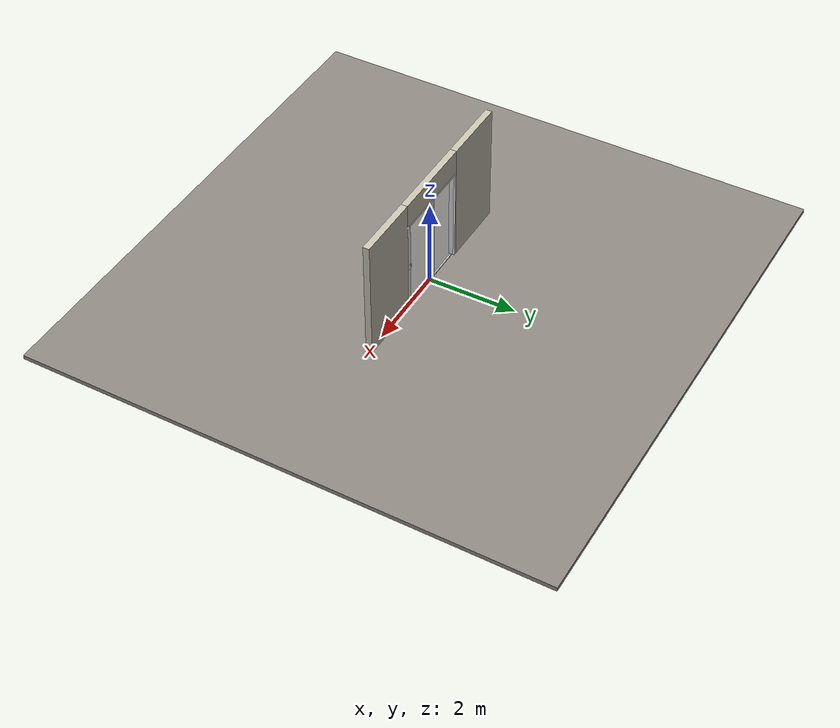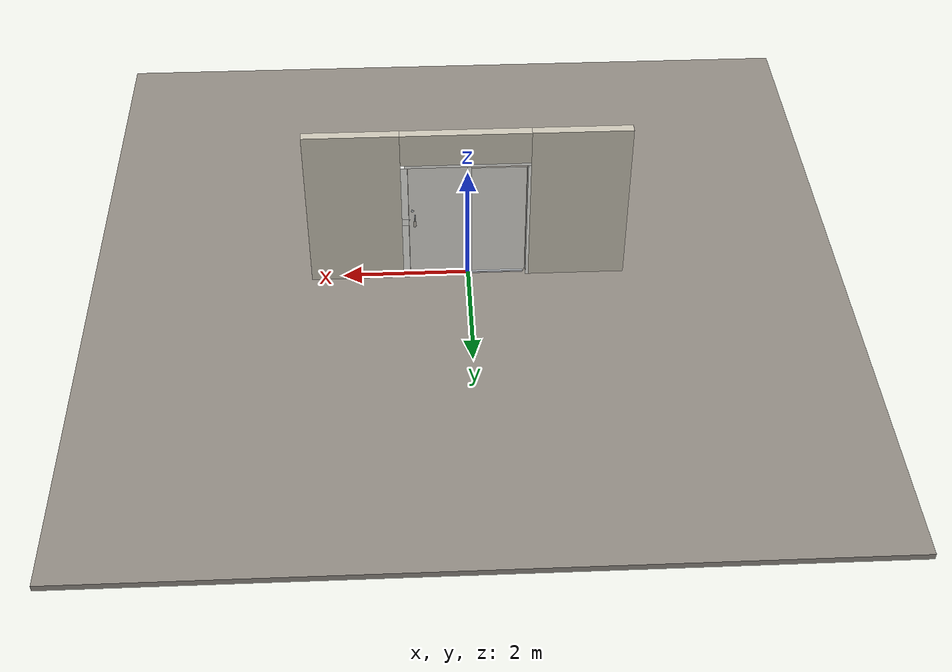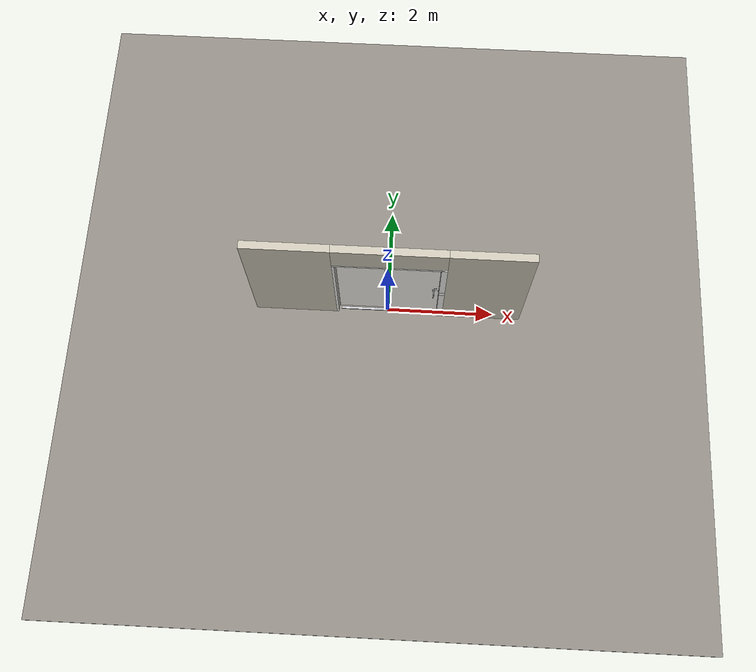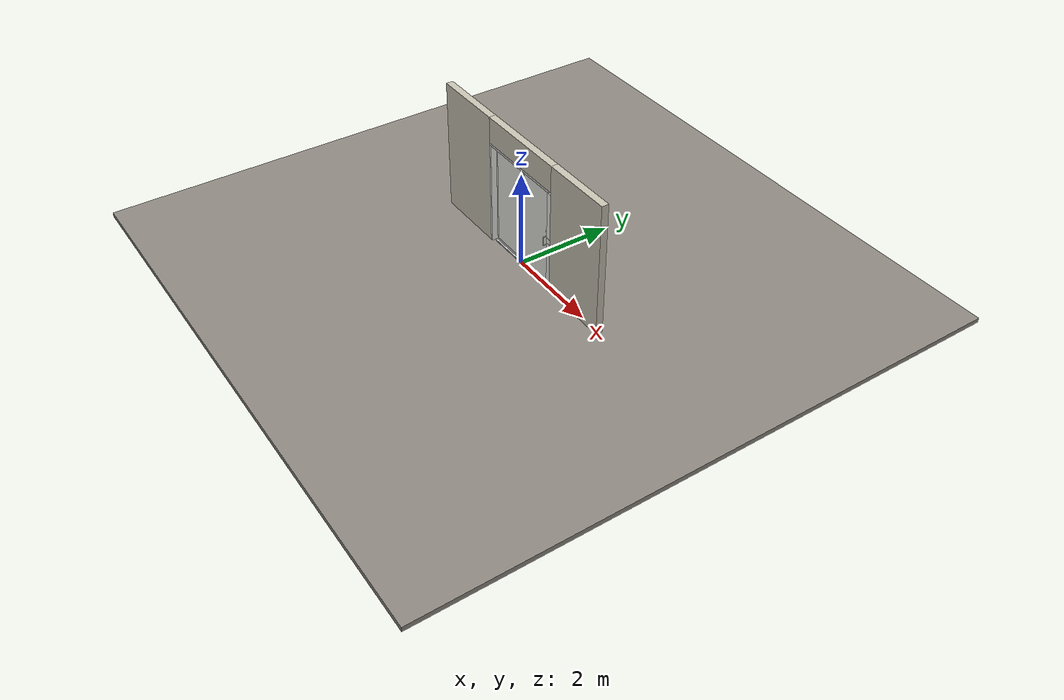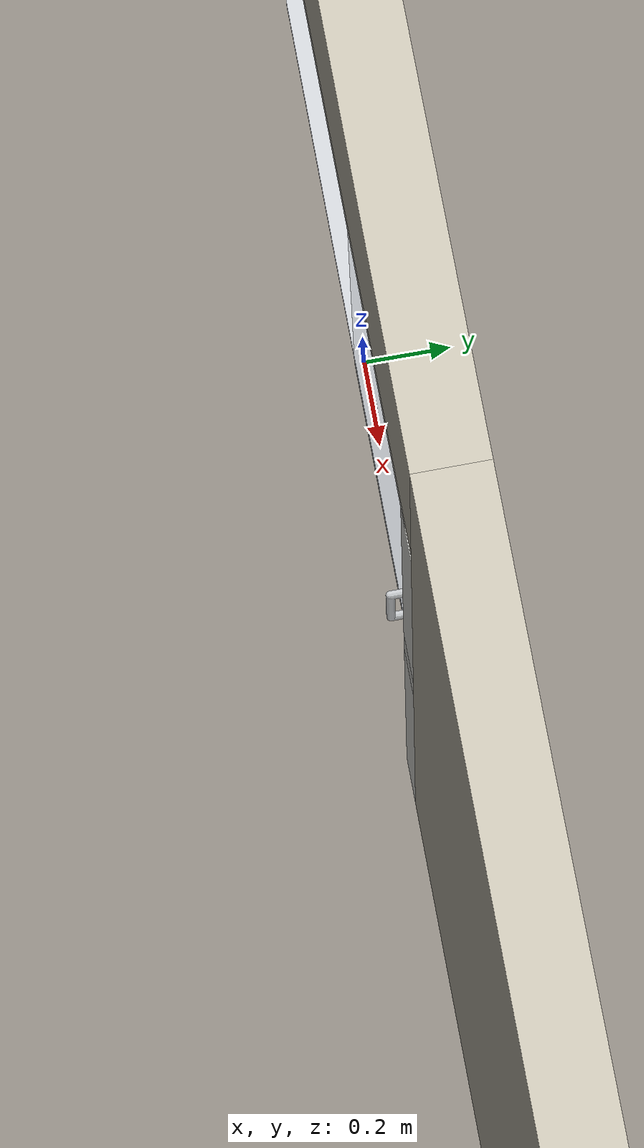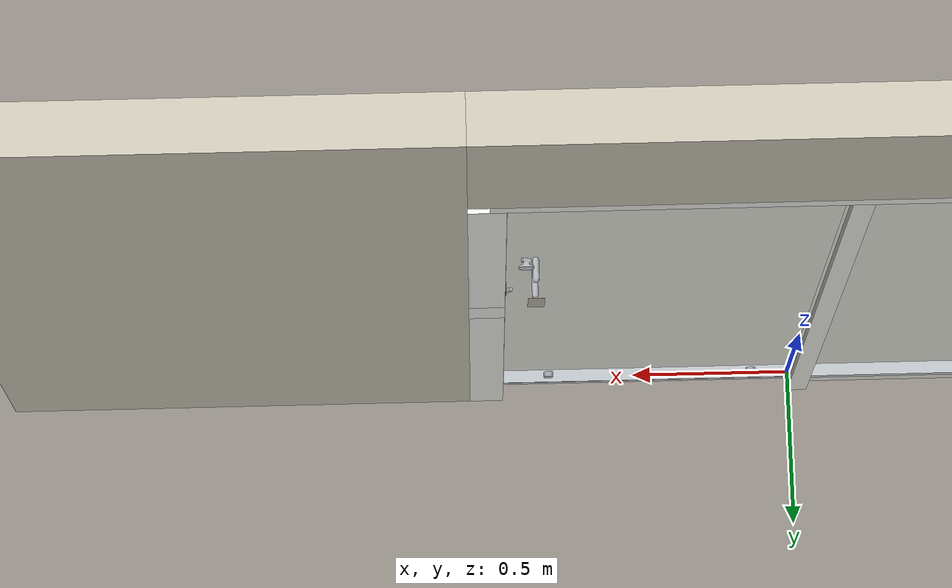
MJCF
<?xml version="1.0" ?>
<mujoco model="db0480_sliding_single_simple">
  <compiler angle="radian" meshdir="../../hardware" texturedir="../../textures" autolimits="true" inertiafromgeom="false"/>
  <option timestep="0.002" integrator="implicitfast" cone="elliptic" impratio="10" noslip_iterations="3">
    <flag multiccd="enable"/>
  </option>
  <size memory="16M"/>
  <default>
    <geom condim="4" solref="0.005 1" solimp="0.95 0.99 0.001"/>
    <joint solreflimit="0.005 1" solimplimit="0.95 0.99 0.001"/>
    <tendon solreflimit="0.005 1"/>
    <equality solref="0.002 1"/>
  </default>
  <visual>
    <headlight ambient="0.4 0.4 0.4" diffuse="0.7 0.7 0.7" specular="0.2 0.2 0.2"/>
    <quality shadowsize="4096"/>
    <map znear="0.01" zfar="60"/>
  </visual>
  <asset>
    <mesh name="pull_1e5d69a91a" file="pull_1e5d69a91a.obj"/>
    <mesh name="thumbturn_eb5c9899a3" file="thumbturn_eb5c9899a3.obj"/>
    <material name="mat_floor" rgba="0.55 0.53 0.5 1" specular="0.2" shininess="0.15" reflectance="0"/>
    <material name="mat_wall" rgba="0.78 0.76 0.7 1" specular="0.2" shininess="0.1" reflectance="0"/>
    <material name="mat_frame" rgba="0.92 0.92 0.9 1" specular="0.2" shininess="0.6" reflectance="0"/>
    <material name="mat_track" rgba="0.8 0.81 0.83 1" specular="0.8" shininess="0.6" reflectance="0.4"/>
    <material name="mat_fixed_glass" rgba="0.85 0.92 0.95 0.25" specular="0.2" shininess="0.95" reflectance="0.1"/>
    <material name="mat_leaf" rgba="0.85 0.92 0.95 0.25" specular="0.2" shininess="0.95" reflectance="0.1"/>
    <material name="mat_glass_leaf" rgba="0.85 0.92 0.95 0.25" specular="0.2" shininess="0.95" reflectance="0.1"/>
    <material name="mat_patch" rgba="0.75 0.76 0.77 1" specular="0.8" shininess="0.65" reflectance="0.4"/>
    <material name="mat_roller" rgba="0.65 0.66 0.68 1" specular="0.74" shininess="0.5" reflectance="0.36"/>
    <material name="mat_op_stainless" rgba="0.75 0.76 0.77 1" specular="0.8" shininess="0.65" reflectance="0.4"/>
    <material name="mat_op_nickel_satin" rgba="0.72 0.7 0.66 1" specular="0.8" shininess="0.65" reflectance="0.4"/>
    <material name="mat_hook" rgba="0.75 0.76 0.77 1" specular="0.8" shininess="0.65" reflectance="0.4"/>
    <texture name="skybox" type="skybox" builtin="gradient" rgb1="0.6 0.7 0.85" rgb2="0.9 0.92 0.95" width="256" height="256"/>
  </asset>
  <worldbody>
    <light name="sun" pos="1.5 -2.5 4" dir="-0.3 0.5 -0.8" directional="true" diffuse="0.8 0.8 0.8" specular="0.3 0.3 0.3" castshadow="true"/>
    <light name="fill" pos="-1.5 2.5 3" dir="0.3 -0.5 -0.7" directional="true" diffuse="0.35 0.35 0.4" castshadow="false"/>
    <camera name="robot_view" pos="0 -2.667812 1.836487" xyaxes="1 0 0 0 0.26963 0.962964" fovy="52"/>
    <camera name="far_view" pos="0 2.667812 1.836487" xyaxes="-1 0 0 0 -0.26963 0.962964" fovy="52"/>
    <camera name="iso" pos="2.027537 -2.240962 2.263337" xyaxes="0.741536 0.670913 0 -0.242917 0.268487 0.932151" fovy="46"/>
    <camera name="detail_handle" pos="1.009 -0.8825 1.33" xyaxes="0.97561 0.219512 0 -0.070934 0.315262 0.94635" fovy="38"/>
    <geom name="floor" type="box" size="6 6 0.05" pos="0 0 -0.05" material="mat_floor" group="0" contype="1" conaffinity="1" friction="0.8 0.005 0.0001" density="2400"/>
    <geom name="wall_left" type="box" size="0.7655 0.0725 1.3895" pos="-1.7345 0 1.3895" material="mat_wall" group="0" contype="1" conaffinity="1" friction="0.6 0.005 0.0001" density="800"/>
    <geom name="wall_right" type="box" size="0.7355 0.0725 1.3895" pos="1.7645 0 1.3895" material="mat_wall" group="0" contype="1" conaffinity="1" friction="0.6 0.005 0.0001" density="800"/>
    <geom name="wall_header" type="box" size="0.999 0.0725 0.2775" pos="0.03 0 2.5015" material="mat_wall" group="0" contype="1" conaffinity="1" friction="0.6 0.005 0.0001" density="800"/>
    <geom name="jamb_l" type="box" size="0.0225 0.0725 1.0895" pos="-0.9465 0 1.0895" material="mat_frame" group="0" contype="1" conaffinity="1" friction="0.6 0.005 0.0001" density="300"/>
    <geom name="jamb_head" type="box" size="0.969 0.0725 0.0225" pos="0 0 2.2015" material="mat_frame" group="0" contype="1" conaffinity="1" friction="0.6 0.005 0.0001" density="300"/>
    <geom name="fixed_panel_glass" type="box" size="0.442 0.003 1.0395" pos="-0.462 0.04 1.0895" material="mat_fixed_glass" group="0" contype="1" conaffinity="1" friction="0.6 0.005 0.0001" density="2500"/>
    <geom name="fixed_panel_stile" type="box" size="0.03 0.012 1.0895" pos="-0.03 0.0475 1.0895" material="mat_frame" group="0" contype="1" conaffinity="1" friction="0.6 0.005 0.0001" density="1400"/>
    <geom name="bottom_rail" type="box" size="0.9275 0.02 0.012" pos="0.0415 0 0.012" material="mat_track" group="0" contype="1" conaffinity="1" friction="0.6 0.005 0.0001" density="2700"/>
    <geom name="leaf_hook_keeper" type="box" size="0.008 0.015 0.006" pos="0.937 0 1.13" material="mat_hook" group="0" contype="1" conaffinity="1" friction="0.6 0.005 0.0001" density="7900"/>
    <geom name="jamb_latch_pwall_1130_n" type="box" size="0.0525 0.022 0.06" pos="0.9765 -0.0505 1.13" material="mat_frame" group="0" contype="1" conaffinity="1" friction="0.6 0.005 0.0001" density="300"/>
    <geom name="jamb_latch_pwall_1130_p" type="box" size="0.0525 0.022 0.06" pos="0.9765 0.0505 1.13" material="mat_frame" group="0" contype="1" conaffinity="1" friction="0.6 0.005 0.0001" density="300"/>
    <geom name="jamb_latch_pback_1130" type="box" size="0.004 0.0285 0.06" pos="1.025 0 1.13" material="mat_frame" group="0" contype="1" conaffinity="1" friction="0.6 0.005 0.0001" density="300"/>
    <geom name="jamb_latch_0" type="box" size="0.0525 0.0725 0.535" pos="0.9765 0 0.535" material="mat_frame" group="0" contype="1" conaffinity="1" friction="0.6 0.005 0.0001" density="300"/>
    <geom name="jamb_latch_1" type="box" size="0.0525 0.0725 0.4945" pos="0.9765 0 1.6845" material="mat_frame" group="0" contype="1" conaffinity="1" friction="0.6 0.005 0.0001" density="300"/>
    <geom name="leaf_hook_keeper_plate_b" type="box" size="0.0345 0.003 0.0005" pos="0.9235 0 1.067" quat="-0.5 -0.5 0.5 0.5" material="mat_hook" group="1" contype="0" conaffinity="0" density="7800"/>
    <geom name="leaf_hook_keeper_plate_l" type="box" size="0.003 0.06 0.0005" pos="0.9235 0.0315 1.13" quat="-0.5 -0.5 0.5 0.5" material="mat_hook" group="1" contype="0" conaffinity="0" density="7800"/>
    <geom name="leaf_hook_keeper_plate_t" type="box" size="0.0345 0.003 0.0005" pos="0.9235 0 1.193" quat="-0.5 -0.5 0.5 0.5" material="mat_hook" group="1" contype="0" conaffinity="0" density="7800"/>
    <geom name="leaf_hook_keeper_plate_r" type="box" size="0.003 0.06 0.0005" pos="0.9235 -0.0315 1.13" quat="-0.5 -0.5 0.5 0.5" material="mat_hook" group="1" contype="0" conaffinity="0" density="7800"/>
    <geom name="leaf_hook_keeper_bracket" type="box" size="0.0064 0.00725 0.005" pos="0.937 0.02175 1.13" material="mat_hook" group="1" contype="0" conaffinity="0" density="7850"/>
    <site name="approach_point" pos="0 -1.5 0" quat="1 0 0 0" size="0.05" rgba="0.2 0.9 0.2 0.5" group="4"/>
    <site name="goal_point" pos="0 1.5 0" quat="1 0 0 0" size="0.05" rgba="0.2 0.9 0.2 0.5" group="4"/>
    <site name="door_plane_center" pos="0 0 1.0895" quat="1 0 0 0" size="0.02" rgba="0.2 0.9 0.2 0.5" group="4"/>
    <body name="leaf" pos="0.462 0 0">
      <inertial pos="0.002264 -0.000427 1.094266" mass="136.910684" quat="0.500524 0.499385 -0.50059 0.4995" diaginertia="9.627760541 51.901250218 61.474118357"/>
      <joint name="leaf_slide" type="slide" axis="-1 0 0" limited="true" range="0 0.841" damping="8.858084" frictionloss="40.352897" armature="0.5"/>
      <geom name="leaf_glass" type="box" size="0.457 0.0225 1.067" pos="0 0 1.097" material="mat_glass_leaf" group="0" contype="1" conaffinity="1" friction="0.4 0.005 0.0001" density="1"/>
      <geom name="leaf_roller_0" type="cylinder" size="0.015 0.008" pos="-0.342 0 0.039" quat="0.707107 -0.707107 0 0" material="mat_roller" group="1" contype="0" conaffinity="0" density="7850"/>
      <geom name="leaf_roller_1" type="cylinder" size="0.015 0.008" pos="0.312 0 0.039" quat="0.707107 -0.707107 0 0" material="mat_roller" group="1" contype="0" conaffinity="0" density="7850"/>
      <geom name="leaf_pull_n" type="mesh" mesh="pull_1e5d69a91a" pos="0.367 -0.0225 1.05" quat="0.707107 0.707107 0 0" material="mat_op_stainless" group="1" contype="0" conaffinity="0" density="3000"/>
      <geom name="leaf_pull_col_n" type="capsule" size="0.0095 0.08" pos="0.367 -0.0825 1.05" material="mat_op_stainless" group="3" contype="1" conaffinity="1" rgba="0.8 0.3 0.3 0.25" friction="0.7 0.01 0.0001" density="3000"/>
      <geom name="leaf_ext_pull_p" type="box" size="0.025 0.0005 0.05" pos="0.367 0.023 1.05" material="mat_op_nickel_satin" group="1" contype="0" conaffinity="0" density="1000"/>
      <geom name="leaf_hook_faceplate" type="box" size="0.0006 0.011 0.045" pos="0.4564 0 1.13" material="mat_hook" group="1" contype="0" conaffinity="0" density="7900"/>
      <site name="leaf_pull_grip_n" pos="0.367 -0.0825 1.05" quat="1 0 0 0" size="0.012" rgba="0.2 0.9 0.2 0.5" group="4"/>
      <site name="leaf_ext_pull_grip_p" pos="0.367 0.0225 1.05" quat="1 0 0 0" size="0.012" rgba="0.2 0.9 0.2 0.5" group="4"/>
      <site name="leaf_edge_mid" pos="0.457 0 1.097" quat="1 0 0 0" size="0.02" rgba="0.2 0.9 0.2 0.5" group="4"/>
      <body name="leaf_hook_thumbturn" pos="0.397 -0.0225 1.27">
        <inertial pos="0 -0.012928 0" mass="0.178946" quat="0.678504 0.199079 -0.199079 -0.678504" diaginertia="0.000026045 0.000026215 0.000032438"/>
        <joint name="leaf_hook_thumbturn_hinge" type="hinge" axis="0 1 0" limited="true" range="0 1" damping="0.05" frictionloss="0.25" armature="0.005" ref="1"/>
        <geom name="leaf_hook_tt_mesh" type="mesh" mesh="thumbturn_eb5c9899a3" pos="0 0 0" quat="0.620545 0.620545 0.339005 -0.339005" material="mat_hook" group="0" contype="1" conaffinity="1" friction="0.6 0.005 0.0001" density="7100"/>
        <geom name="leaf_hook_tt_col" type="box" size="0.006 0.012 0.016" pos="0 -0.02 0" quat="0.877583 0 0.479426 0" material="mat_hook" group="3" contype="1" conaffinity="1" rgba="0.8 0.3 0.3 0.25" friction="0.6 0.005 0.0001" density="7100"/>
        <site name="leaf_hook_tt_grip" pos="0 -0.03 0" quat="0.877583 0 0.479426 0" size="0.01" rgba="0.2 0.9 0.2 0.5" group="4"/>
      </body>
      <body name="leaf_hook" pos="0.457 0 1.13">
        <inertial pos="0.006651 0 -0.027503" mass="0.072048" quat="-0.148813 -0.148813 0.69127 -0.69127" diaginertia="0.000005266 0.00001511 0.000019175"/>
        <joint name="leaf_hook_hinge" type="hinge" axis="0 1 0" limited="true" range="0 1" damping="0.05" frictionloss="0.1" armature="0.005" ref="1"/>
        <geom name="leaf_hook_arm" type="box" size="0.022 0.005 0.006" pos="-0.002657 0 -0.025474" quat="0.877583 0 0.479426 0" material="mat_hook" group="0" contype="1" conaffinity="1" friction="0.6 0.005 0.0001" density="7900"/>
        <geom name="leaf_hook_tip" type="box" size="0.006 0.005 0.016" pos="0.019451 0 -0.030293" quat="0.877583 0 0.479426 0" material="mat_hook" group="0" contype="1" conaffinity="1" friction="0.6 0.005 0.0001" density="7900"/>
      </body>
    </body>
  </worldbody>
  <equality>
    <joint name="leaf_hook_couple" joint1="leaf_hook_hinge" joint2="leaf_hook_thumbturn_hinge" polycoef="0 1 0 0 0" active="true"/>
  </equality>
  <sensor>
    <jointpos name="leaf_slide_pos" joint="leaf_slide"/>
    <jointvel name="leaf_slide_vel" joint="leaf_slide"/>
    <jointpos name="leaf_hook_thumbturn_hinge_pos" joint="leaf_hook_thumbturn_hinge"/>
    <jointvel name="leaf_hook_thumbturn_hinge_vel" joint="leaf_hook_thumbturn_hinge"/>
    <jointpos name="leaf_hook_hinge_pos" joint="leaf_hook_hinge"/>
    <jointvel name="leaf_hook_hinge_vel" joint="leaf_hook_hinge"/>
  </sensor>
</mujoco>
